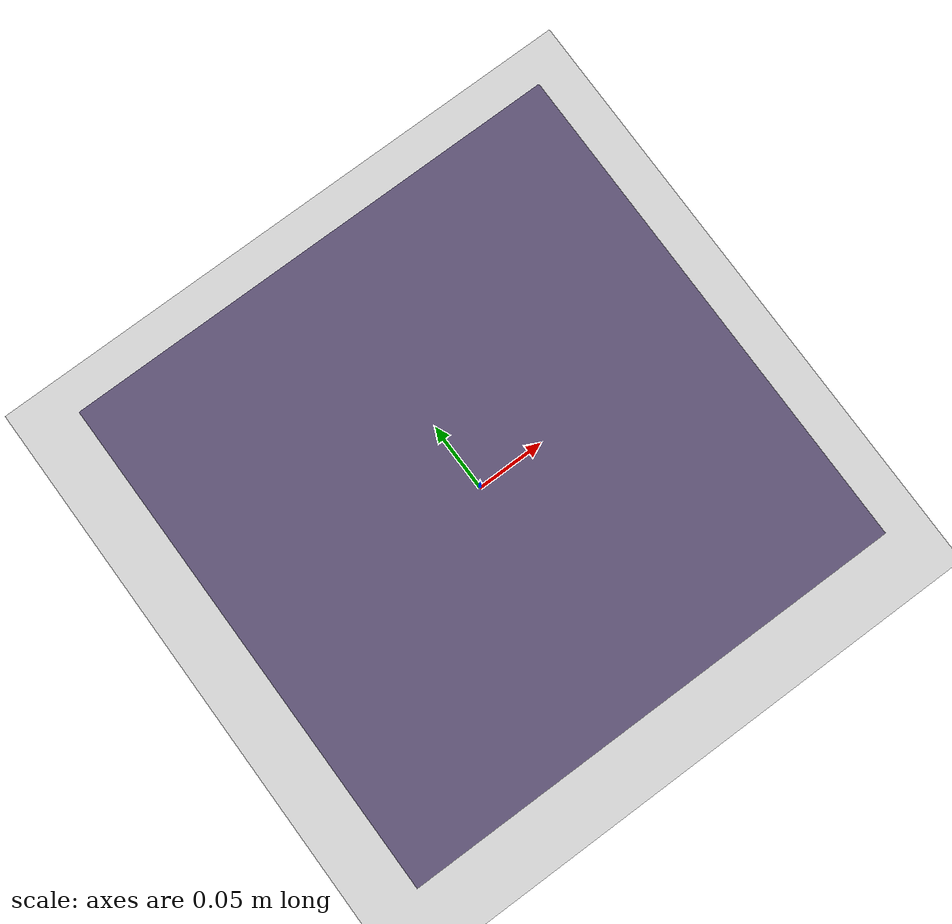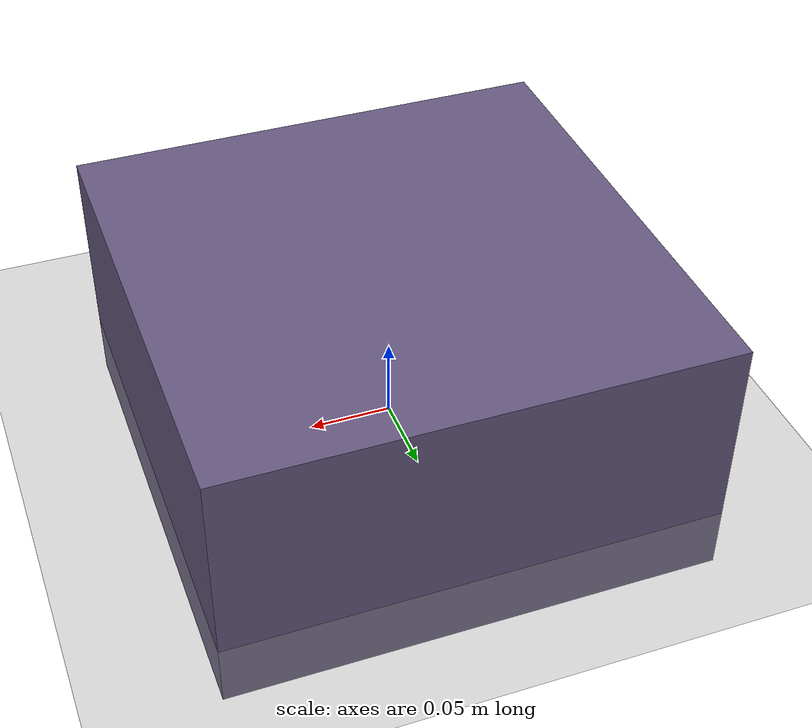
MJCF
<?xml version="1.0" encoding="utf-8"?>
<mujoco model="bin_picking">
  <compiler angle="radian" autolimits="true"/>
  <option timestep="0.002" gravity="0 0 -9.81"/>
  <worldbody>
    <geom name="ground" type="plane" size="1 1 0.1" condim="3"/>
    <light name="main" pos="0.5 0.5 1.2" dir="0 0 -1" directional="true"/>
    <camera name="main" pos="0.800 0.600 0.500" fovy="60" mode="fixed"/>
    <body name="surface_bin" pos="0 0 0"><geom name="bin_geom" type="box" size="0.15 0.15 0.08" pos="0 0 0.04" rgba="0.4 0.35 0.5 1" condim="3"/></body>
    <body name="object_box1" pos="-0.02 0 0.06"><freejoint name="box1_joint"/><geom name="box1_geom" type="box" size="0.025 0.025 0.025" mass="0.08" rgba="0.8 0.4 0.2 1"/></body>
    <body name="object_sphere1" pos="0.02 0.02 0.06"><freejoint name="sphere1_joint"/><geom name="sphere1_geom" type="sphere" size="0.02" mass="0.05" rgba="0.2 0.6 0.9 1"/></body>
    <body name="object_cylinder1" pos="0 -0.02 0.065"><freejoint name="cyl1_joint"/><geom name="cylinder1_geom" type="cylinder" size="0.02 0.03" mass="0.06" rgba="0.5 0.7 0.3 1"/></body>
  </worldbody>
  <contact/>
</mujoco>
